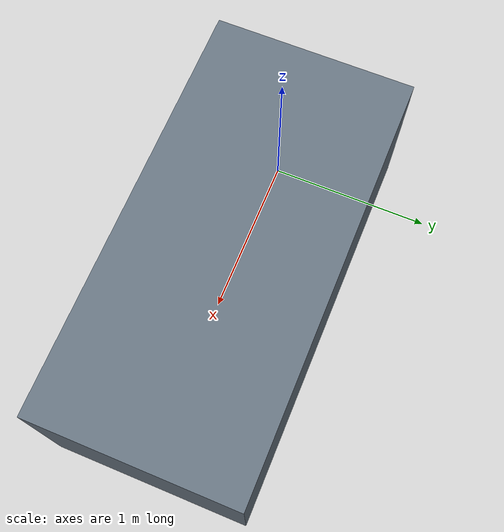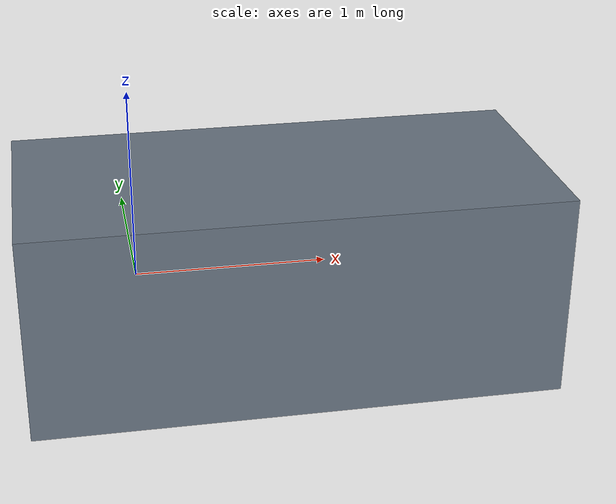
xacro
<?xml version="1.0"?>
<robot xmlns:xacro="http://www.ros.org/wiki/xacro" name="usv">

  <!-- ======================= 可覆盖参数（外参，单位 m / rad） ======================= -->
  <!-- base_link → livox_frame：倒装 180°（roll=π，用 xacro 内置 pi）；正装改为 0 0 0 -->
  <xacro:arg name="livox_xyz" default="1.60 0.0 0.36"/>
  <xacro:arg name="livox_rpy" default="${pi} 0.0 0.0"/>
  <!-- livox_frame → imu_link（Mid360 内置 IMU，与 fasterlio extrinsic_T 互为相反平移）：
       yaml: lidar_in_imu T=[-0.011, -0.02329, 0.04412], R=I
       → IMU 在雷达系 = -T -->
  <xacro:arg name="imu_xyz" default="0.011 0.02329 -0.04412"/>
  <xacro:arg name="imu_rpy" default="0.0 0.0 0.0"/>
  <xacro:arg name="gps_xyz" default="-0.03 -0.1 0.01"/>
  <xacro:arg name="gps_rpy" default="0.0 0.0 0.0"/>
  <!-- base_link → camera_front_astra_link（前向 Astra，对应 usv_cf 的 camera_link） -->
  <xacro:arg name="camera_front_astra_xyz" default="1.72 0.0 0.1"/>
  <xacro:arg name="camera_front_astra_rpy" default="0.0 0.0 0.0"/>
  <!-- base_link → camera_back_video_link（后向 UVC，供 apriltag，对应 usv_cf 的 camera_rear_link；绕 Z 转 180° 朝后） -->
  <xacro:arg name="camera_back_video_xyz" default="1.60 0.00 0.42"/>
  <xacro:arg name="camera_back_video_rpy" default="0.0 ${-27*pi/180} ${pi}"/>

  <xacro:arg name="camera_front_hik_xyz" default="1.69 0.0 0.1"/>
  <xacro:arg name="camera_front_hik_rpy" default="0.0 0.0 0.0"/>
  <!-- base_link → camera_front_gemini_link（前向 Gemini 330/335L；姿态补偿/定位用，占位值，实船测量后覆盖） -->
  <xacro:arg name="camera_front_gemini_xyz" default="1.70 0.0 0.15"/>
  <xacro:arg name="camera_front_gemini_rpy" default="0.0 0.0 0.0"/>

  <xacro:property name="livox_xyz" value="$(arg livox_xyz)"/>
  <xacro:property name="livox_rpy" value="$(arg livox_rpy)"/>
  <xacro:property name="imu_xyz" value="$(arg imu_xyz)"/>
  <xacro:property name="imu_rpy" value="$(arg imu_rpy)"/>
  <xacro:property name="gps_xyz" value="$(arg gps_xyz)"/>
  <xacro:property name="gps_rpy" value="$(arg gps_rpy)"/>
  <xacro:property name="camera_front_astra_xyz" value="$(arg camera_front_astra_xyz)"/>
  <xacro:property name="camera_front_astra_rpy" value="$(arg camera_front_astra_rpy)"/>
  <xacro:property name="camera_back_video_xyz" value="$(arg camera_back_video_xyz)"/>
  <xacro:property name="camera_back_video_rpy" value="$(arg camera_back_video_rpy)"/>
  <xacro:property name="camera_front_hik_xyz" value="$(arg camera_front_hik_xyz)"/>
  <xacro:property name="camera_front_hik_rpy" value="$(arg camera_front_hik_rpy)"/>
  <xacro:property name="camera_front_gemini_xyz" value="$(arg camera_front_gemini_xyz)"/>
  <xacro:property name="camera_front_gemini_rpy" value="$(arg camera_front_gemini_rpy)"/>

  <!-- 船体外形（仅 RViz 可视化；不影响 TF/导航），实船尺寸 -->
  <xacro:property name="hull_length" value="2.72"/>
  <xacro:property name="hull_width"  value="1.30"/>
  <xacro:property name="hull_height" value="1.07"/>

  <material name="usv_hull_gray">
    <color rgba="0.4 0.45 0.5 1.0"/>
  </material>
  <material name="usv_sensor_orange">
    <color rgba="0.9 0.5 0.1 1.0"/>
  </material>

  <xacro:macro name="sensor_frame" params="name xyz rpy parent:=base_link">
    <link name="${name}">
      <visual>
        <geometry>
          <box size="0.06 0.06 0.06"/>
        </geometry>
        <material name="usv_sensor_orange"/>
      </visual>
    </link>
    <joint name="${parent}_to_${name}" type="fixed">
      <parent link="${parent}"/>
      <child link="${name}"/>
      <origin xyz="${xyz}" rpy="${rpy}"/>
    </joint>
  </xacro:macro>

  <!-- REP-103：camera_link → optical（Z 前、X 右、Y 下） -->
  <xacro:macro name="optical_frame" params="name parent">
    <link name="${name}"/>
    <joint name="${parent}_to_${name}" type="fixed">
      <parent link="${parent}"/>
      <child link="${name}"/>
      <origin xyz="0 0 0" rpy="${-pi/2} 0 ${-pi/2}"/>
    </joint>
  </xacro:macro>

  <link name="base_link">
    <visual>
      <origin xyz="${hull_height - 0.3} 0 0" rpy="0 0 0"/>
      <geometry>
        <box size="${hull_length} ${hull_width} ${hull_height}"/>
      </geometry>
      <material name="usv_hull_gray"/>
    </visual>
  </link>

  <!-- 倒装 Mid360：base → livox 默认 roll=π；IMU 仍相对雷达系 -->
  <xacro:sensor_frame name="livox_frame" xyz="${livox_xyz}" rpy="${livox_rpy}"/>
  <xacro:sensor_frame name="imu_link" xyz="${imu_xyz}" rpy="${imu_rpy}" parent="livox_frame"/>
  <xacro:sensor_frame name="gps_link" xyz="${gps_xyz}" rpy="${gps_rpy}"/>

  <!-- 前向 Astra：仅挂 link；color/depth/optical 由 astra_camera 驱动发布 -->
  <xacro:sensor_frame name="camera_front_astra_link"
                      xyz="${camera_front_astra_xyz}"
                      rpy="${camera_front_astra_rpy}"/>

  <!-- 前向 Hikvision（RTSP 网络相机，正装）：link + optical；图像 header 用 optical -->
  <xacro:sensor_frame name="camera_front_hik_link"
                      xyz="${camera_front_hik_xyz}"
                      rpy="${camera_front_hik_rpy}"/>
  <xacro:optical_frame name="camera_front_hik_optical_frame"
                       parent="camera_front_hik_link"/>

  <!-- 前向 Gemini 330/335L（orbbec_camera）：仅挂 link；color/depth/optical/imu 各系由驱动 publish_tf 发布 -->
  <xacro:sensor_frame name="camera_front_gemini_link"
                      xyz="${camera_front_gemini_xyz}"
                      rpy="${camera_front_gemini_rpy}"/>

  <!-- 后向 UVC：link + optical；apriltag TF parent 用 link，图像 header 用 optical -->
  <xacro:sensor_frame name="camera_back_video_link"
                      xyz="${camera_back_video_xyz}"
                      rpy="${camera_back_video_rpy}"/>
  <xacro:optical_frame name="camera_back_video_optical_frame"
                       parent="camera_back_video_link"/>

</robot>
